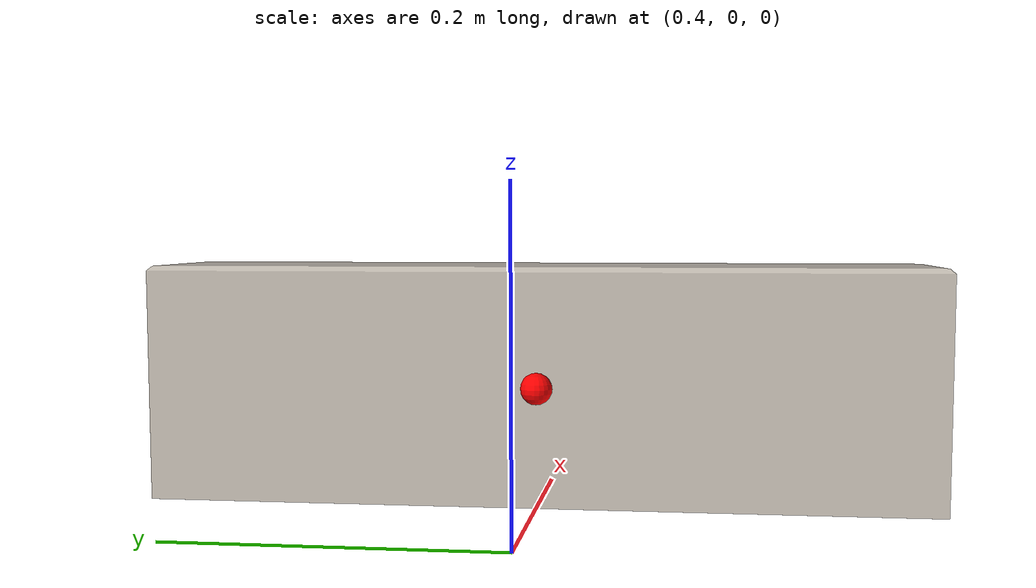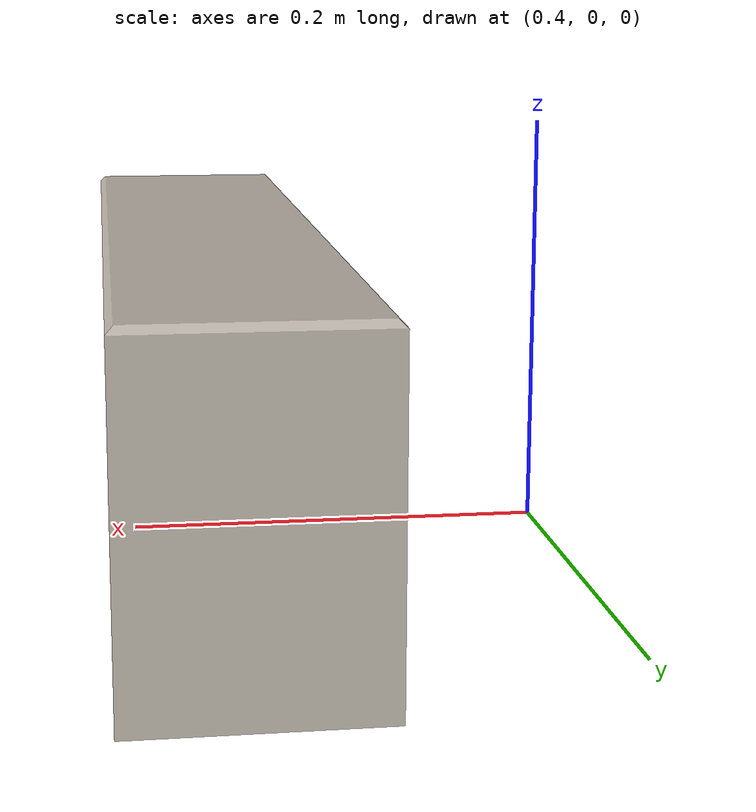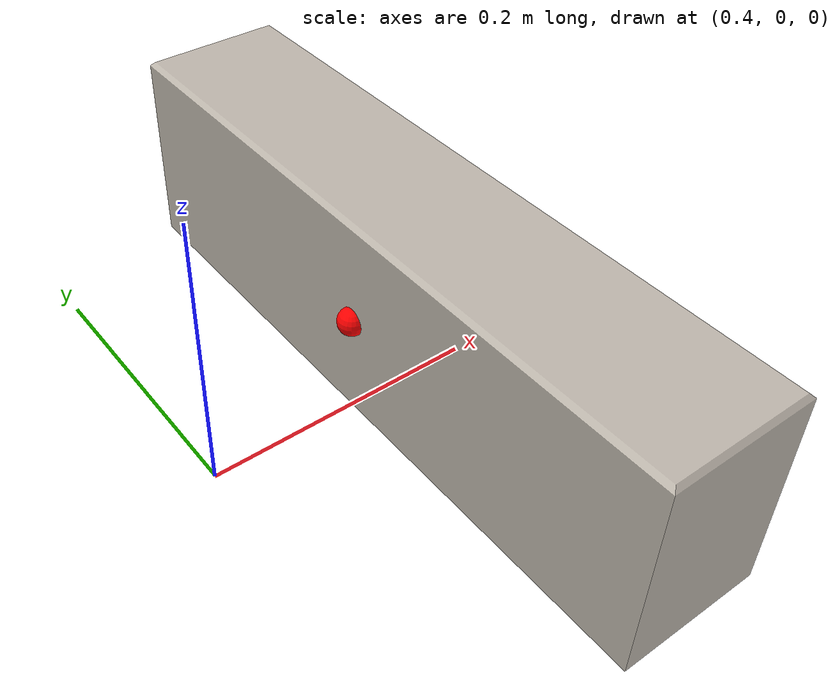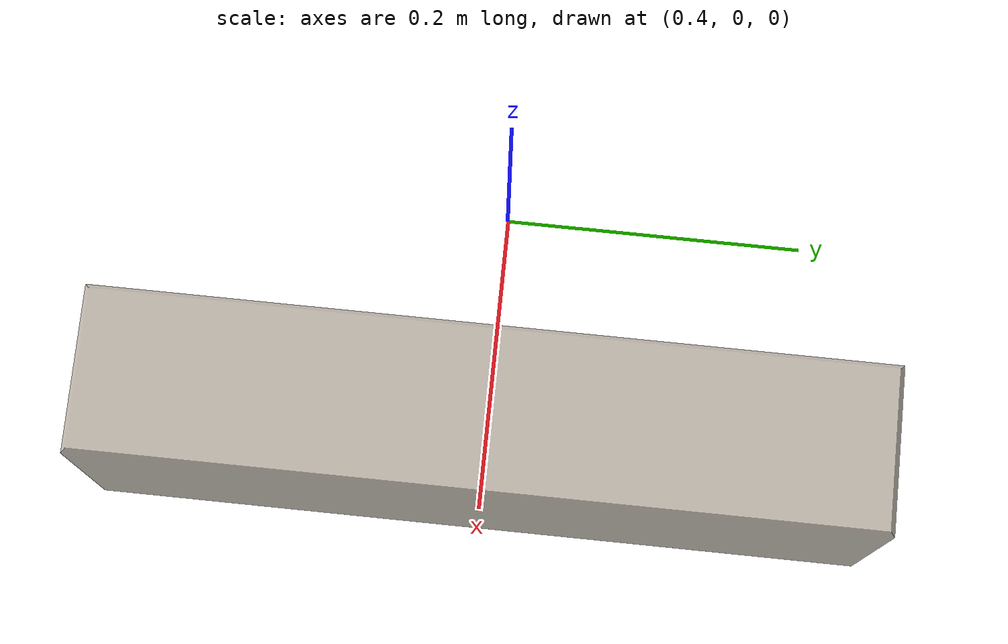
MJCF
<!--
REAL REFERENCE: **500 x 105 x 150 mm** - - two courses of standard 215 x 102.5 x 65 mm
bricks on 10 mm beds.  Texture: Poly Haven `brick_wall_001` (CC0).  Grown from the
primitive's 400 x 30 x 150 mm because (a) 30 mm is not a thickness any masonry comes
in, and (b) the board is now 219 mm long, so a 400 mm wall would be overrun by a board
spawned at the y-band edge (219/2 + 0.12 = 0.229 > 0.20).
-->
<?xml version="1.0"?>
<mujoco model="wall">
  <compiler angle="radian" meshdir="assets" texturedir="assets"/>

  <asset>
    <texture name="wall_tex" type="2d" file="wall_tex.png"/>
    <material name="wall_mat" texture="wall_tex" specular="0.15" shininess="0.15"/>
    <mesh name="wall_vis" file="wall_vis.obj"/>
  </asset>

  <worldbody>
    <body name="wall_base" pos="0.5605 0 0.075" mocap="true">
      <geom name="wall_visual" type="mesh" mesh="wall_vis" material="wall_mat" contype="0" conaffinity="0" group="2" mass="0"/>
      <geom type="box" name="wall_geom" size="0.0525 0.25 0.075" pos="0 0 0"
            condim="3" friction="0.9 0.03 0.003" rgba="0.5 0.5 0.5 0.3" group="3"
            contype="1" conaffinity="1" solref="0.01 1"/>
      <site name="object_site" pos="-0.0525 0 0" size="0.01" rgba="1 0 0 1"/>
    </body>
  </worldbody>
</mujoco>
